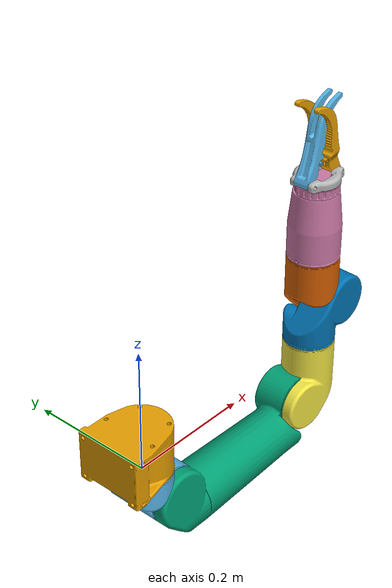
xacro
<?xml version="1.0"?>

<robot name="girona500"
    xmlns:xacro="http://www.ros.org/wiki/xacro">

    <xacro:arg name="arm_namespace" default="bravo"/>

    <xacro:include filename="$(find blueprintlab_reachbravo7_manipulator_description)/urdf/bravo7_macro.urdf.xacro"/>
    <xacro:include filename="$(find blueprintlab_reachbravo7_manipulator_description)/urdf/end_effectors/fingers_macro.urdf.xacro"/>

    <xacro:reach_bravo7 prefix="$(arg arm_namespace)"/>
    <xacro:reach_bravo7_fingers prefix="$(arg arm_namespace)"/>
</robot>

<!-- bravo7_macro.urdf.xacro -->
<robot xmlns:xacro="http://www.ros.org/wiki/xacro">
    <xacro:macro name="reach_bravo7" params="prefix">

        <link name="${prefix}/base_link">
            <collision>
                <geometry>
                    <mesh filename="package://blueprintlab_reachbravo7_manipulator_description/resources/meshes/manipulator/base_link_phy.obj"/>
                </geometry>
                <origin rpy="0 0 0" xyz="0 0 0"/>
            </collision>
            <visual>
                <geometry>
                    <mesh filename="package://blueprintlab_reachbravo7_manipulator_description/resources/meshes/manipulator/base_link.obj"/>
                </geometry>
                <origin rpy="0 0 0" xyz="0 0 0"/>
            </visual>
        </link>

        <link name="${prefix}/link1">
            <collision>
                <geometry>
                    <mesh filename="package://blueprintlab_reachbravo7_manipulator_description/resources/meshes/manipulator/link1_phy.obj"/>
                </geometry>
                <origin rpy="${pi} 0 0" xyz="0 0 0"/>
            </collision>
            <visual>
                <geometry>
                    <mesh filename="package://blueprintlab_reachbravo7_manipulator_description/resources/meshes/manipulator/link1.obj"/>
                </geometry>
                <origin rpy="${pi} 0 0" xyz="0 0 0"/>
            </visual>
        </link>

        <link name="${prefix}/link2">
            <collision>
                <geometry>
                    <mesh filename="package://blueprintlab_reachbravo7_manipulator_description/resources/meshes/manipulator/link2_phy.obj"/>
                </geometry>
                <origin rpy="${pi/2} 0 0" xyz="0 0 0"/>
            </collision>
            <visual>
                <geometry>
                    <mesh filename="package://blueprintlab_reachbravo7_manipulator_description/resources/meshes/manipulator/link2.obj"/>
                </geometry>
                <origin rpy="${pi/2} 0 0" xyz="0 0 0"/>
            </visual>
        </link>

        <link name="${prefix}/link3">
            <collision>
                <geometry>
                    <mesh filename="package://blueprintlab_reachbravo7_manipulator_description/resources/meshes/manipulator/link3_phy.obj"/>
                </geometry>
                <origin rpy="${pi/2} 0 ${-pi/2}" xyz="0 0 0"/>
            </collision>
            <visual>
                <geometry>
                    <mesh filename="package://blueprintlab_reachbravo7_manipulator_description/resources/meshes/manipulator/link3.obj"/>
                </geometry>
                <origin rpy="${pi/2} 0 ${-pi/2}" xyz="0 0 0"/>
            </visual>
        </link>

        <link name="${prefix}/link4">
            <collision>
                <geometry>
                    <mesh filename="package://blueprintlab_reachbravo7_manipulator_description/resources/meshes/manipulator/link4_phy.obj"/>
                </geometry>
                <origin rpy="0 ${-pi/2} 0" xyz="0 0 0"/>
            </collision>
            <visual>
                <geometry>
                    <mesh filename="package://blueprintlab_reachbravo7_manipulator_description/resources/meshes/manipulator/link4.obj"/>
                </geometry>
                <origin rpy="0 ${-pi/2} 0" xyz="0 0 0"/>
            </visual>
        </link>

        <link name="${prefix}/link5">
            <collision>
                <geometry>
                    <mesh filename="package://blueprintlab_reachbravo7_manipulator_description/resources/meshes/manipulator/link5_phy.obj"/>
                </geometry>
                <origin rpy="${pi/2} 0 ${-pi/2}" xyz="0 0 0"/>
            </collision>
            <visual>
                <geometry>
                    <mesh filename="package://blueprintlab_reachbravo7_manipulator_description/resources/meshes/manipulator/link5.obj"/>
                </geometry>
                <origin rpy="${pi/2} 0 ${-pi/2}" xyz="0 0 0"/>
            </visual>
        </link>

        <link name="${prefix}/link6">
            <collision>
                <geometry>
                    <mesh filename="package://blueprintlab_reachbravo7_manipulator_description/resources/meshes/manipulator/link6_phy.obj"/>
                </geometry>
                <origin rpy="0 ${-pi/2} 0" xyz="0 0 0"/>
            </collision>
            <visual>
                <geometry>
                    <mesh filename="package://blueprintlab_reachbravo7_manipulator_description/resources/meshes/manipulator/link6_v2.obj"/>
                </geometry>
                <origin rpy="0 ${-pi/2} 0" xyz="0 0 0"/>
            </visual>
        </link>

        <joint name="${prefix}/joint1" type="revolute">
            <parent link="${prefix}/base_link"/>
            <child link="${prefix}/link1"/>
            <origin rpy="${pi} 0 0" xyz="0 0 0"/>
            <axis xyz="0 0 -1"/>
            <limit lower="-3.1" upper="3.1" velocity="0.5" effort="1.0"/>
        </joint>

        <joint name="${prefix}/joint2" type="revolute">
            <parent link="${prefix}/link1"/>
            <child link="${prefix}/link2"/>
            <origin rpy="${pi/2} 0 0" xyz="0.046 0 0.0674"/>
            <axis xyz="0 0 1"/>
            <limit lower="${-pi/2}" upper="${pi/2}" velocity="0.5" effort="1.0"/>
        </joint>

        <joint name="${prefix}/joint3" type="revolute">
            <parent link="${prefix}/link2"/>
            <child link="${prefix}/link3"/>
            <origin rpy="0 0 0" xyz="0.2906 0 0"/>
            <axis xyz="0 0 1"/>
            <limit lower="${-pi/2}" upper="${pi/2}" velocity="0.5" effort="1.0"/>
        </joint>

        <joint name="${prefix}/joint4" type="revolute">
            <parent link="${prefix}/link3"/>
            <child link="${prefix}/link4"/>
            <origin rpy="${-pi/2} 0 ${pi}" xyz="0.0408 -0.09695 0"/>
            <axis xyz="0 0 -1"/>
            <limit lower="-3.1" upper="3.1" velocity="0.5" effort="1.0"/>
        </joint>

        <joint name="${prefix}/joint5" type="revolute">
            <parent link="${prefix}/link4"/>
            <child link="${prefix}/link5"/>
            <origin rpy="${-pi/2} 0 0" xyz="-0.0408 0 0.063"/>
            <axis xyz="0 0 1"/>
            <limit lower="${-pi}" upper="0" velocity="0.5" effort="1.0"/>
        </joint>

        <joint name="${prefix}/joint6" type="revolute">
            <parent link="${prefix}/link5"/>
            <child link="${prefix}/link6"/>
            <origin rpy="${pi/2} 0 0" xyz="0.0408 -0.08863 0"/>
            <axis xyz="0 0 -1"/>
            <limit lower="-3.1" upper="3.1" velocity="0.5" effort="1.0"/>
        </joint>

        <!-- Prismatic actuator -->
    </xacro:macro>
</robot>

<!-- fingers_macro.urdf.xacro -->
<robot xmlns:xacro="http://www.ros.org/wiki/xacro">
    <xacro:macro name="reach_bravo7_fingers" params="prefix">

        <link name="${prefix}/jaw_link">
            <visual>
                <geometry>
                    <mesh filename="package://blueprintlab_reachbravo7_manipulator_description/resources/meshes/end_effectors/fingers/jaw.obj"/>
                </geometry>
            </visual>
            <inertial>
                <origin xyz="0 0 0" rpy="0 0 0"/>
                <mass value="1e-5"/>
                <inertia ixx="0.01" ixy="0.0" ixz="0.0" iyy="0.01" iyz="0.0" izz="0.01"/>
            </inertial>
        </link>

        <!-- Outside finger -->
        <link name="${prefix}/gripper_outside">
            <visual>
                <geometry>
                    <mesh filename="package://blueprintlab_reachbravo7_manipulator_description/resources/meshes/end_effectors/fingers/gripper_outside.obj"/>
                </geometry>
                <origin rpy="0 0 0" xyz="0 0 0"/>
            </visual>
            <collision>
                <origin xyz="-0.0628 -0.0207 0.0" rpy="0 0 0.2584"/>
                <geometry>
                    <box size="0.149 0.0277 0.07"/>
                </geometry>
            </collision>
            <inertial>
                <origin xyz="0 0 0" rpy="0 0 0"/>
                <mass value="1e-5"/>
                <inertia ixx="0.01" ixy="0.0" ixz="0.0" iyy="0.01" iyz="0.0" izz="0.01"/>
            </inertial>
        </link>

        <!-- Inside finger -->
        <link name="${prefix}/gripper_inside">
            <visual>
                <geometry>
                    <mesh filename="package://blueprintlab_reachbravo7_manipulator_description/resources/meshes/end_effectors/fingers/gripper_inside.obj"/>
                </geometry>
                <origin rpy="0 0 0" xyz="0 0 0"/>
            </visual>
            <collision>
                <origin xyz="-0.0628 0.0207 0.0" rpy="0 0 -0.2584"/>
                <geometry>
                    <box size="0.149 0.0277 0.05"/>
                </geometry>
            </collision>
            <inertial>
                <origin xyz="0 0 0" rpy="0 0 0"/>
                <mass value="1e-5"/>
                <inertia ixx="0.01" ixy="0.0" ixz="0.0" iyy="0.01" iyz="0.0" izz="0.01"/>
            </inertial>
        </link>

        <joint name="${prefix}/jaw_joint" type="fixed">
            <origin rpy="0 0 ${pi/2}" xyz="0.0 0.0 ${0.124 + 0.0097}"/>
            <parent link="${prefix}/link6"/>
            <child link="${prefix}/jaw_link"/>
        </joint>

        <joint name="${prefix}/gripper_outside_joint" type="revolute">
            <origin rpy="0 ${-pi/2} 0" xyz="0 0.033 0"/>
            <parent link="${prefix}/jaw_link"/>
            <child link="${prefix}/gripper_outside"/>
            <axis xyz="0 0 1"/>
            <limit effort="10" lower="0" upper="0.5" velocity="10"/>
        </joint>

        <joint name="${prefix}/gripper_inside_joint" type="revolute">
            <origin rpy="0 ${-pi/2} 0" xyz="0 -0.033 0"/>
            <parent link="${prefix}/jaw_link"/>
            <child link="${prefix}/gripper_inside"/>
            <axis xyz="0 0 -1"/>
            <limit effort="10" lower="0" upper="0.5" velocity="10"/>
        </joint>

    </xacro:macro>
</robot>
